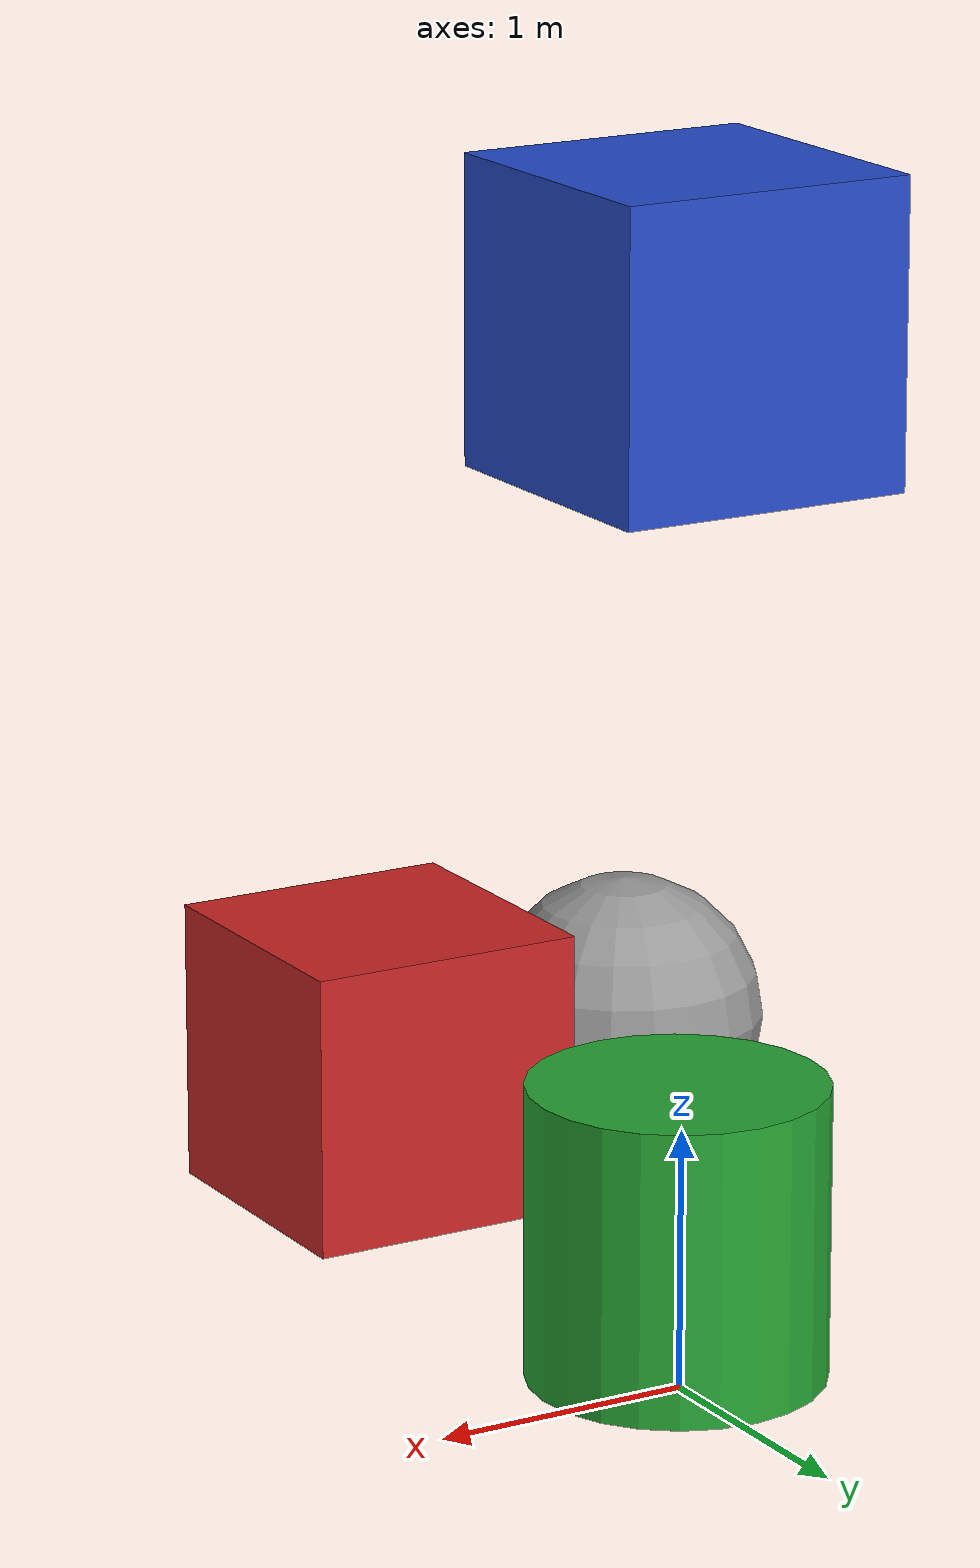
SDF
<?xml version="1.0" ?>
<sdf version="1.6">
  <model name="model_00">
    <pose>0 0 0.5 0 0 0</pose>
    <link name="link_00">
      <pose>0.25 0 1 0 0 0</pose>
      <collision name="collision_00">
        <geometry>
          <sphere>
            <radius>0.5</radius>
          </sphere>
        </geometry>
      </collision>
      <visual name="visual_00">
        <geometry>
          <sphere>
            <radius>0.5</radius>
          </sphere>
        </geometry>
        <material>
          <script>
            <uri>file://media/materials/scripts/gazebo.material</uri>
            <name>Gazebo/Grey</name>
          </script>
        </material>
      </visual>
    </link>

    <model name="model_01">
      <pose relative_to="link_00">1.0 0 0 0 0 0</pose>
      <link name="link_01">
        <pose>0.25 0 1.0 0 0 0</pose>
        <collision name="collision_01">
          <geometry>
            <box>
              <size>1 1 1</size>
            </box>
          </geometry>
        </collision>
        <visual name="visual_01">
          <geometry>
            <box>
              <size>1 1 1</size>
            </box>
          </geometry>
          <material>
            <script>
              <uri>file://media/materials/scripts/gazebo.material</uri>
              <name>Gazebo/Red</name>
            </script>
          </material>
        </visual>
      </link>
      <model name="model_02">
        <pose relative_to="link_01">0 2 0 0 0 0</pose>
        <link name="link_02">
          <pose>0.25 0 1.0 0 0 0</pose>
          <collision name="collision_02">
            <geometry>
              <cylinder>
                <radius>0.5</radius>
                <length>1</length>
              </cylinder>
            </geometry>
          </collision>
          <visual name="visual_02">
            <geometry>
              <cylinder>
                <radius>0.5</radius>
                <length>1</length>
              </cylinder>
            </geometry>
            <material>
              <script>
                <uri>file://media/materials/scripts/gazebo.material</uri>
                <name>Gazebo/Green</name>
              </script>
            </material>
          </visual>
        </link>
        <model name="model_03">
          <pose relative_to="link_02">0 0 3 0 0 0</pose>
          <link name="link_03">
            <pose>0.25 0 1.0 0 0 0</pose>
            <collision name="collision_03">
              <geometry>
                <box>
                  <size>1 1 1</size>
                </box>
              </geometry>
            </collision>
            <visual name="visual_03">
              <geometry>
                <box>
                  <size>1 1 1</size>
                </box>
              </geometry>
              <material>
                <script>
                  <uri>file://media/materials/scripts/gazebo.material</uri>
                  <name>Gazebo/Blue</name>
                </script>
              </material>
            </visual>
          </link>
        </model>
      </model>
    </model>

    <!-- Joints that reference entities in nested models are not compatible
      with frame semantics in SDFormat 1.7 -->

  </model>
</sdf>
